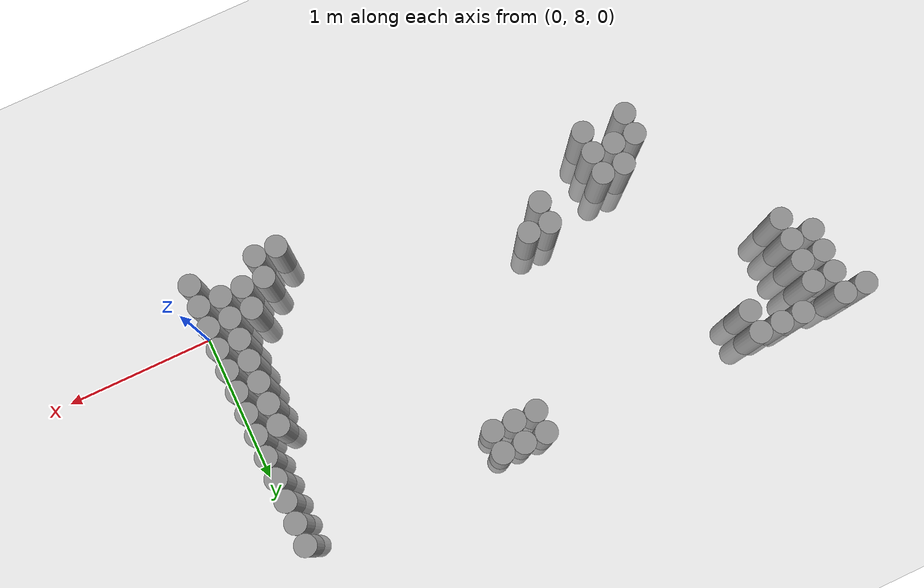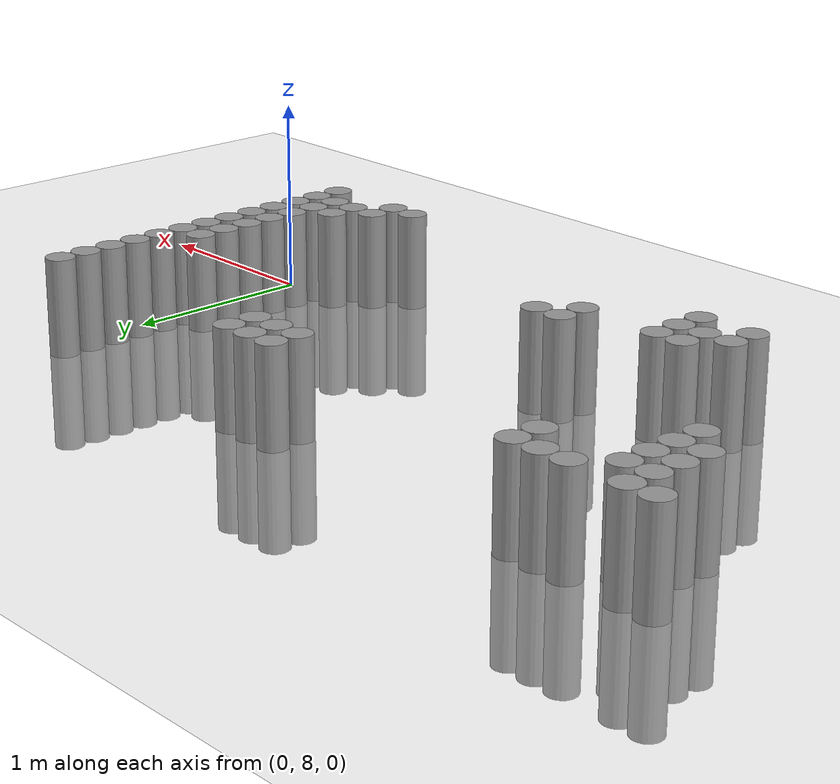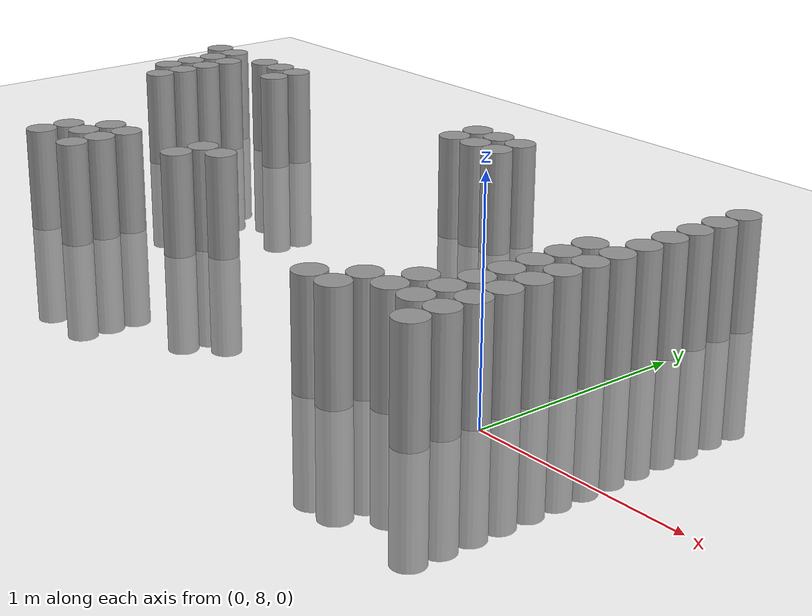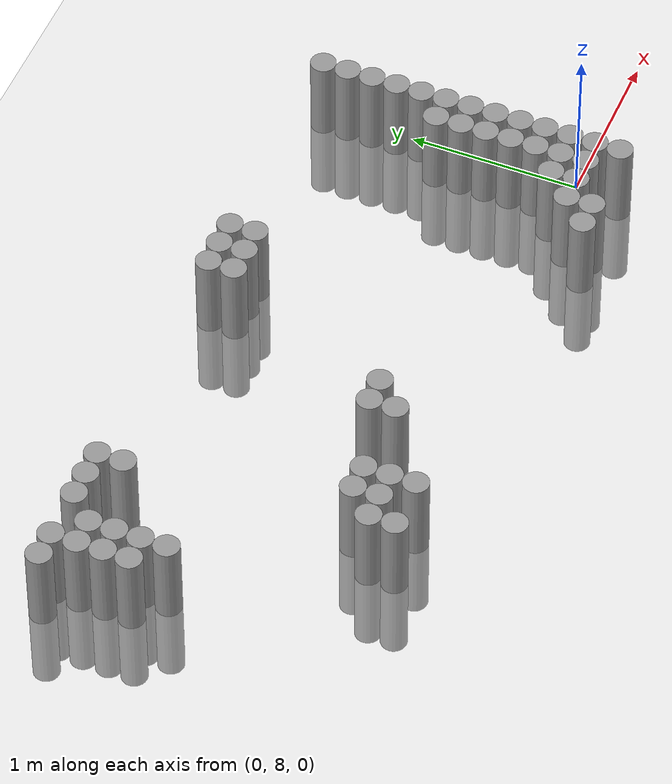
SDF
<sdf version="1.6">
 <world name="default">
  <model name="ground_plane">
   <static>1</static>
   <link name="link">
    <collision name="collision">
     <geometry><plane><normal>0 0 1</normal><size>100 100</size></plane></geometry>
     <surface><friction><ode><mu>100</mu><mu2>50</mu2></ode></friction></surface>
    </collision>
    <visual name="visual">
     <cast_shadows>0</cast_shadows>
     <geometry><plane><normal>0 0 1</normal><size>100 100</size></plane></geometry>
     <material>
      <script><uri>file://media/materials/scripts/gazebo.material</uri><name>Gazebo/Grey</name></script>
     </material>
    </visual>
   </link>
  </model>
  <model name="unit_cylinder_153">
   <pose>-3.975000 9.525000 0.000000 0.000000 0.000000 0.000000</pose>
   <link name="link">
    <inertial>
     <mass>1</mass>
     <inertia><ixx>0.145833</ixx><ixy>0</ixy><ixz>0</ixz><iyy>0.145833</iyy><iyz>0</iyz><izz>0.125</izz></inertia>
    </inertial>
    <collision name="collision">
     <geometry><cylinder><radius>0.075000</radius><length>1</length></cylinder></geometry>
    </collision>
    <visual name="visual">
     <geometry><cylinder><radius>0.075000</radius><length>1</length></cylinder></geometry>
     <material>
      <script><name>Gazebo/Grey</name><uri>file://media/materials/scripts/gazebo.material</uri></script>
     </material>
    </visual>
   </link>
  </model>
  <model name="unit_cylinder_154">
   <pose>-3.825000 9.075000 0.000000 0.000000 0.000000 0.000000</pose>
   <link name="link">
    <inertial>
     <mass>1</mass>
     <inertia><ixx>0.145833</ixx><ixy>0</ixy><ixz>0</ixz><iyy>0.145833</iyy><iyz>0</iyz><izz>0.125</izz></inertia>
    </inertial>
    <collision name="collision">
     <geometry><cylinder><radius>0.075000</radius><length>1</length></cylinder></geometry>
    </collision>
    <visual name="visual">
     <geometry><cylinder><radius>0.075000</radius><length>1</length></cylinder></geometry>
     <material>
      <script><name>Gazebo/Grey</name><uri>file://media/materials/scripts/gazebo.material</uri></script>
     </material>
    </visual>
   </link>
  </model>
  <model name="unit_cylinder_155">
   <pose>-3.825000 9.225000 0.000000 0.000000 0.000000 0.000000</pose>
   <link name="link">
    <inertial>
     <mass>1</mass>
     <inertia><ixx>0.145833</ixx><ixy>0</ixy><ixz>0</ixz><iyy>0.145833</iyy><iyz>0</iyz><izz>0.125</izz></inertia>
    </inertial>
    <collision name="collision">
     <geometry><cylinder><radius>0.075000</radius><length>1</length></cylinder></geometry>
    </collision>
    <visual name="visual">
     <geometry><cylinder><radius>0.075000</radius><length>1</length></cylinder></geometry>
     <material>
      <script><name>Gazebo/Grey</name><uri>file://media/materials/scripts/gazebo.material</uri></script>
     </material>
    </visual>
   </link>
  </model>
  <model name="unit_cylinder_156">
   <pose>-3.825000 9.375000 0.000000 0.000000 0.000000 0.000000</pose>
   <link name="link">
    <inertial>
     <mass>1</mass>
     <inertia><ixx>0.145833</ixx><ixy>0</ixy><ixz>0</ixz><iyy>0.145833</iyy><iyz>0</iyz><izz>0.125</izz></inertia>
    </inertial>
    <collision name="collision">
     <geometry><cylinder><radius>0.075000</radius><length>1</length></cylinder></geometry>
    </collision>
    <visual name="visual">
     <geometry><cylinder><radius>0.075000</radius><length>1</length></cylinder></geometry>
     <material>
      <script><name>Gazebo/Grey</name><uri>file://media/materials/scripts/gazebo.material</uri></script>
     </material>
    </visual>
   </link>
  </model>
  <model name="unit_cylinder_157">
   <pose>-3.825000 9.525000 0.000000 0.000000 0.000000 0.000000</pose>
   <link name="link">
    <inertial>
     <mass>1</mass>
     <inertia><ixx>0.145833</ixx><ixy>0</ixy><ixz>0</ixz><iyy>0.145833</iyy><iyz>0</iyz><izz>0.125</izz></inertia>
    </inertial>
    <collision name="collision">
     <geometry><cylinder><radius>0.075000</radius><length>1</length></cylinder></geometry>
    </collision>
    <visual name="visual">
     <geometry><cylinder><radius>0.075000</radius><length>1</length></cylinder></geometry>
     <material>
      <script><name>Gazebo/Grey</name><uri>file://media/materials/scripts/gazebo.material</uri></script>
     </material>
    </visual>
   </link>
  </model>
  <model name="unit_cylinder_159">
   <pose>-3.675000 8.925000 0.000000 0.000000 0.000000 0.000000</pose>
   <link name="link">
    <inertial>
     <mass>1</mass>
     <inertia><ixx>0.145833</ixx><ixy>0</ixy><ixz>0</ixz><iyy>0.145833</iyy><iyz>0</iyz><izz>0.125</izz></inertia>
    </inertial>
    <collision name="collision">
     <geometry><cylinder><radius>0.075000</radius><length>1</length></cylinder></geometry>
    </collision>
    <visual name="visual">
     <geometry><cylinder><radius>0.075000</radius><length>1</length></cylinder></geometry>
     <material>
      <script><name>Gazebo/Grey</name><uri>file://media/materials/scripts/gazebo.material</uri></script>
     </material>
    </visual>
   </link>
  </model>
  <model name="unit_cylinder_160">
   <pose>-3.675000 9.075000 0.000000 0.000000 0.000000 0.000000</pose>
   <link name="link">
    <inertial>
     <mass>1</mass>
     <inertia><ixx>0.145833</ixx><ixy>0</ixy><ixz>0</ixz><iyy>0.145833</iyy><iyz>0</iyz><izz>0.125</izz></inertia>
    </inertial>
    <collision name="collision">
     <geometry><cylinder><radius>0.075000</radius><length>1</length></cylinder></geometry>
    </collision>
    <visual name="visual">
     <geometry><cylinder><radius>0.075000</radius><length>1</length></cylinder></geometry>
     <material>
      <script><name>Gazebo/Grey</name><uri>file://media/materials/scripts/gazebo.material</uri></script>
     </material>
    </visual>
   </link>
  </model>
  <model name="unit_cylinder_161">
   <pose>-3.675000 9.225000 0.000000 0.000000 0.000000 0.000000</pose>
   <link name="link">
    <inertial>
     <mass>1</mass>
     <inertia><ixx>0.145833</ixx><ixy>0</ixy><ixz>0</ixz><iyy>0.145833</iyy><iyz>0</iyz><izz>0.125</izz></inertia>
    </inertial>
    <collision name="collision">
     <geometry><cylinder><radius>0.075000</radius><length>1</length></cylinder></geometry>
    </collision>
    <visual name="visual">
     <geometry><cylinder><radius>0.075000</radius><length>1</length></cylinder></geometry>
     <material>
      <script><name>Gazebo/Grey</name><uri>file://media/materials/scripts/gazebo.material</uri></script>
     </material>
    </visual>
   </link>
  </model>
  <model name="unit_cylinder_162">
   <pose>-3.675000 9.375000 0.000000 0.000000 0.000000 0.000000</pose>
   <link name="link">
    <inertial>
     <mass>1</mass>
     <inertia><ixx>0.145833</ixx><ixy>0</ixy><ixz>0</ixz><iyy>0.145833</iyy><iyz>0</iyz><izz>0.125</izz></inertia>
    </inertial>
    <collision name="collision">
     <geometry><cylinder><radius>0.075000</radius><length>1</length></cylinder></geometry>
    </collision>
    <visual name="visual">
     <geometry><cylinder><radius>0.075000</radius><length>1</length></cylinder></geometry>
     <material>
      <script><name>Gazebo/Grey</name><uri>file://media/materials/scripts/gazebo.material</uri></script>
     </material>
    </visual>
   </link>
  </model>
  <model name="unit_cylinder_166">
   <pose>-3.525000 9.525000 0.000000 0.000000 0.000000 0.000000</pose>
   <link name="link">
    <inertial>
     <mass>1</mass>
     <inertia><ixx>0.145833</ixx><ixy>0</ixy><ixz>0</ixz><iyy>0.145833</iyy><iyz>0</iyz><izz>0.125</izz></inertia>
    </inertial>
    <collision name="collision">
     <geometry><cylinder><radius>0.075000</radius><length>1</length></cylinder></geometry>
    </collision>
    <visual name="visual">
     <geometry><cylinder><radius>0.075000</radius><length>1</length></cylinder></geometry>
     <material>
      <script><name>Gazebo/Grey</name><uri>file://media/materials/scripts/gazebo.material</uri></script>
     </material>
    </visual>
   </link>
  </model>
  <model name="unit_cylinder_167">
   <pose>-3.375000 9.525000 0.000000 0.000000 0.000000 0.000000</pose>
   <link name="link">
    <inertial>
     <mass>1</mass>
     <inertia><ixx>0.145833</ixx><ixy>0</ixy><ixz>0</ixz><iyy>0.145833</iyy><iyz>0</iyz><izz>0.125</izz></inertia>
    </inertial>
    <collision name="collision">
     <geometry><cylinder><radius>0.075000</radius><length>1</length></cylinder></geometry>
    </collision>
    <visual name="visual">
     <geometry><cylinder><radius>0.075000</radius><length>1</length></cylinder></geometry>
     <material>
      <script><name>Gazebo/Grey</name><uri>file://media/materials/scripts/gazebo.material</uri></script>
     </material>
    </visual>
   </link>
  </model>
  <model name="unit_cylinder_169">
   <pose>-3.225000 9.375000 0.000000 0.000000 0.000000 0.000000</pose>
   <link name="link">
    <inertial>
     <mass>1</mass>
     <inertia><ixx>0.145833</ixx><ixy>0</ixy><ixz>0</ixz><iyy>0.145833</iyy><iyz>0</iyz><izz>0.125</izz></inertia>
    </inertial>
    <collision name="collision">
     <geometry><cylinder><radius>0.075000</radius><length>1</length></cylinder></geometry>
    </collision>
    <visual name="visual">
     <geometry><cylinder><radius>0.075000</radius><length>1</length></cylinder></geometry>
     <material>
      <script><name>Gazebo/Grey</name><uri>file://media/materials/scripts/gazebo.material</uri></script>
     </material>
    </visual>
   </link>
  </model>
  <model name="unit_cylinder_170">
   <pose>-3.225000 9.525000 0.000000 0.000000 0.000000 0.000000</pose>
   <link name="link">
    <inertial>
     <mass>1</mass>
     <inertia><ixx>0.145833</ixx><ixy>0</ixy><ixz>0</ixz><iyy>0.145833</iyy><iyz>0</iyz><izz>0.125</izz></inertia>
    </inertial>
    <collision name="collision">
     <geometry><cylinder><radius>0.075000</radius><length>1</length></cylinder></geometry>
    </collision>
    <visual name="visual">
     <geometry><cylinder><radius>0.075000</radius><length>1</length></cylinder></geometry>
     <material>
      <script><name>Gazebo/Grey</name><uri>file://media/materials/scripts/gazebo.material</uri></script>
     </material>
    </visual>
   </link>
  </model>
  <model name="unit_cylinder_174">
   <pose>-3.075000 7.875000 0.000000 0.000000 0.000000 0.000000</pose>
   <link name="link">
    <inertial>
     <mass>1</mass>
     <inertia><ixx>0.145833</ixx><ixy>0</ixy><ixz>0</ixz><iyy>0.145833</iyy><iyz>0</iyz><izz>0.125</izz></inertia>
    </inertial>
    <collision name="collision">
     <geometry><cylinder><radius>0.075000</radius><length>1</length></cylinder></geometry>
    </collision>
    <visual name="visual">
     <geometry><cylinder><radius>0.075000</radius><length>1</length></cylinder></geometry>
     <material>
      <script><name>Gazebo/Grey</name><uri>file://media/materials/scripts/gazebo.material</uri></script>
     </material>
    </visual>
   </link>
  </model>
  <model name="unit_cylinder_175">
   <pose>-3.075000 8.025000 0.000000 0.000000 0.000000 0.000000</pose>
   <link name="link">
    <inertial>
     <mass>1</mass>
     <inertia><ixx>0.145833</ixx><ixy>0</ixy><ixz>0</ixz><iyy>0.145833</iyy><iyz>0</iyz><izz>0.125</izz></inertia>
    </inertial>
    <collision name="collision">
     <geometry><cylinder><radius>0.075000</radius><length>1</length></cylinder></geometry>
    </collision>
    <visual name="visual">
     <geometry><cylinder><radius>0.075000</radius><length>1</length></cylinder></geometry>
     <material>
      <script><name>Gazebo/Grey</name><uri>file://media/materials/scripts/gazebo.material</uri></script>
     </material>
    </visual>
   </link>
  </model>
  <model name="unit_cylinder_178">
   <pose>-2.925000 8.025000 0.000000 0.000000 0.000000 0.000000</pose>
   <link name="link">
    <inertial>
     <mass>1</mass>
     <inertia><ixx>0.145833</ixx><ixy>0</ixy><ixz>0</ixz><iyy>0.145833</iyy><iyz>0</iyz><izz>0.125</izz></inertia>
    </inertial>
    <collision name="collision">
     <geometry><cylinder><radius>0.075000</radius><length>1</length></cylinder></geometry>
    </collision>
    <visual name="visual">
     <geometry><cylinder><radius>0.075000</radius><length>1</length></cylinder></geometry>
     <material>
      <script><name>Gazebo/Grey</name><uri>file://media/materials/scripts/gazebo.material</uri></script>
     </material>
    </visual>
   </link>
  </model>
  <model name="unit_cylinder_179">
   <pose>-2.925000 8.175000 0.000000 0.000000 0.000000 0.000000</pose>
   <link name="link">
    <inertial>
     <mass>1</mass>
     <inertia><ixx>0.145833</ixx><ixy>0</ixy><ixz>0</ixz><iyy>0.145833</iyy><iyz>0</iyz><izz>0.125</izz></inertia>
    </inertial>
    <collision name="collision">
     <geometry><cylinder><radius>0.075000</radius><length>1</length></cylinder></geometry>
    </collision>
    <visual name="visual">
     <geometry><cylinder><radius>0.075000</radius><length>1</length></cylinder></geometry>
     <material>
      <script><name>Gazebo/Grey</name><uri>file://media/materials/scripts/gazebo.material</uri></script>
     </material>
    </visual>
   </link>
  </model>
  <model name="unit_cylinder_184">
   <pose>-2.775000 7.875000 0.000000 0.000000 0.000000 0.000000</pose>
   <link name="link">
    <inertial>
     <mass>1</mass>
     <inertia><ixx>0.145833</ixx><ixy>0</ixy><ixz>0</ixz><iyy>0.145833</iyy><iyz>0</iyz><izz>0.125</izz></inertia>
    </inertial>
    <collision name="collision">
     <geometry><cylinder><radius>0.075000</radius><length>1</length></cylinder></geometry>
    </collision>
    <visual name="visual">
     <geometry><cylinder><radius>0.075000</radius><length>1</length></cylinder></geometry>
     <material>
      <script><name>Gazebo/Grey</name><uri>file://media/materials/scripts/gazebo.material</uri></script>
     </material>
    </visual>
   </link>
  </model>
  <model name="unit_cylinder_185">
   <pose>-2.775000 8.025000 0.000000 0.000000 0.000000 0.000000</pose>
   <link name="link">
    <inertial>
     <mass>1</mass>
     <inertia><ixx>0.145833</ixx><ixy>0</ixy><ixz>0</ixz><iyy>0.145833</iyy><iyz>0</iyz><izz>0.125</izz></inertia>
    </inertial>
    <collision name="collision">
     <geometry><cylinder><radius>0.075000</radius><length>1</length></cylinder></geometry>
    </collision>
    <visual name="visual">
     <geometry><cylinder><radius>0.075000</radius><length>1</length></cylinder></geometry>
     <material>
      <script><name>Gazebo/Grey</name><uri>file://media/materials/scripts/gazebo.material</uri></script>
     </material>
    </visual>
   </link>
  </model>
  <model name="unit_cylinder_186">
   <pose>-2.775000 8.175000 0.000000 0.000000 0.000000 0.000000</pose>
   <link name="link">
    <inertial>
     <mass>1</mass>
     <inertia><ixx>0.145833</ixx><ixy>0</ixy><ixz>0</ixz><iyy>0.145833</iyy><iyz>0</iyz><izz>0.125</izz></inertia>
    </inertial>
    <collision name="collision">
     <geometry><cylinder><radius>0.075000</radius><length>1</length></cylinder></geometry>
    </collision>
    <visual name="visual">
     <geometry><cylinder><radius>0.075000</radius><length>1</length></cylinder></geometry>
     <material>
      <script><name>Gazebo/Grey</name><uri>file://media/materials/scripts/gazebo.material</uri></script>
     </material>
    </visual>
   </link>
  </model>
  <model name="unit_cylinder_194">
   <pose>-2.325000 8.175000 0.000000 0.000000 0.000000 0.000000</pose>
   <link name="link">
    <inertial>
     <mass>1</mass>
     <inertia><ixx>0.145833</ixx><ixy>0</ixy><ixz>0</ixz><iyy>0.145833</iyy><iyz>0</iyz><izz>0.125</izz></inertia>
    </inertial>
    <collision name="collision">
     <geometry><cylinder><radius>0.075000</radius><length>1</length></cylinder></geometry>
    </collision>
    <visual name="visual">
     <geometry><cylinder><radius>0.075000</radius><length>1</length></cylinder></geometry>
     <material>
      <script><name>Gazebo/Grey</name><uri>file://media/materials/scripts/gazebo.material</uri></script>
     </material>
    </visual>
   </link>
  </model>
  <model name="unit_cylinder_195">
   <pose>-2.325000 8.325000 0.000000 0.000000 0.000000 0.000000</pose>
   <link name="link">
    <inertial>
     <mass>1</mass>
     <inertia><ixx>0.145833</ixx><ixy>0</ixy><ixz>0</ixz><iyy>0.145833</iyy><iyz>0</iyz><izz>0.125</izz></inertia>
    </inertial>
    <collision name="collision">
     <geometry><cylinder><radius>0.075000</radius><length>1</length></cylinder></geometry>
    </collision>
    <visual name="visual">
     <geometry><cylinder><radius>0.075000</radius><length>1</length></cylinder></geometry>
     <material>
      <script><name>Gazebo/Grey</name><uri>file://media/materials/scripts/gazebo.material</uri></script>
     </material>
    </visual>
   </link>
  </model>
  <model name="unit_cylinder_196">
   <pose>-2.175000 8.325000 0.000000 0.000000 0.000000 0.000000</pose>
   <link name="link">
    <inertial>
     <mass>1</mass>
     <inertia><ixx>0.145833</ixx><ixy>0</ixy><ixz>0</ixz><iyy>0.145833</iyy><iyz>0</iyz><izz>0.125</izz></inertia>
    </inertial>
    <collision name="collision">
     <geometry><cylinder><radius>0.075000</radius><length>1</length></cylinder></geometry>
    </collision>
    <visual name="visual">
     <geometry><cylinder><radius>0.075000</radius><length>1</length></cylinder></geometry>
     <material>
      <script><name>Gazebo/Grey</name><uri>file://media/materials/scripts/gazebo.material</uri></script>
     </material>
    </visual>
   </link>
  </model>
  <model name="unit_cylinder_197">
   <pose>-1.725000 9.375000 0.000000 0.000000 0.000000 0.000000</pose>
   <link name="link">
    <inertial>
     <mass>1</mass>
     <inertia><ixx>0.145833</ixx><ixy>0</ixy><ixz>0</ixz><iyy>0.145833</iyy><iyz>0</iyz><izz>0.125</izz></inertia>
    </inertial>
    <collision name="collision">
     <geometry><cylinder><radius>0.075000</radius><length>1</length></cylinder></geometry>
    </collision>
    <visual name="visual">
     <geometry><cylinder><radius>0.075000</radius><length>1</length></cylinder></geometry>
     <material>
      <script><name>Gazebo/Grey</name><uri>file://media/materials/scripts/gazebo.material</uri></script>
     </material>
    </visual>
   </link>
  </model>
  <model name="unit_cylinder_198">
   <pose>-1.725000 9.525000 0.000000 0.000000 0.000000 0.000000</pose>
   <link name="link">
    <inertial>
     <mass>1</mass>
     <inertia><ixx>0.145833</ixx><ixy>0</ixy><ixz>0</ixz><iyy>0.145833</iyy><iyz>0</iyz><izz>0.125</izz></inertia>
    </inertial>
    <collision name="collision">
     <geometry><cylinder><radius>0.075000</radius><length>1</length></cylinder></geometry>
    </collision>
    <visual name="visual">
     <geometry><cylinder><radius>0.075000</radius><length>1</length></cylinder></geometry>
     <material>
      <script><name>Gazebo/Grey</name><uri>file://media/materials/scripts/gazebo.material</uri></script>
     </material>
    </visual>
   </link>
  </model>
  <model name="unit_cylinder_199">
   <pose>-1.575000 9.375000 0.000000 0.000000 0.000000 0.000000</pose>
   <link name="link">
    <inertial>
     <mass>1</mass>
     <inertia><ixx>0.145833</ixx><ixy>0</ixy><ixz>0</ixz><iyy>0.145833</iyy><iyz>0</iyz><izz>0.125</izz></inertia>
    </inertial>
    <collision name="collision">
     <geometry><cylinder><radius>0.075000</radius><length>1</length></cylinder></geometry>
    </collision>
    <visual name="visual">
     <geometry><cylinder><radius>0.075000</radius><length>1</length></cylinder></geometry>
     <material>
      <script><name>Gazebo/Grey</name><uri>file://media/materials/scripts/gazebo.material</uri></script>
     </material>
    </visual>
   </link>
  </model>
  <model name="unit_cylinder_200">
   <pose>-1.575000 9.525000 0.000000 0.000000 0.000000 0.000000</pose>
   <link name="link">
    <inertial>
     <mass>1</mass>
     <inertia><ixx>0.145833</ixx><ixy>0</ixy><ixz>0</ixz><iyy>0.145833</iyy><iyz>0</iyz><izz>0.125</izz></inertia>
    </inertial>
    <collision name="collision">
     <geometry><cylinder><radius>0.075000</radius><length>1</length></cylinder></geometry>
    </collision>
    <visual name="visual">
     <geometry><cylinder><radius>0.075000</radius><length>1</length></cylinder></geometry>
     <material>
      <script><name>Gazebo/Grey</name><uri>file://media/materials/scripts/gazebo.material</uri></script>
     </material>
    </visual>
   </link>
  </model>
  <model name="unit_cylinder_201">
   <pose>-1.425000 9.375000 0.000000 0.000000 0.000000 0.000000</pose>
   <link name="link">
    <inertial>
     <mass>1</mass>
     <inertia><ixx>0.145833</ixx><ixy>0</ixy><ixz>0</ixz><iyy>0.145833</iyy><iyz>0</iyz><izz>0.125</izz></inertia>
    </inertial>
    <collision name="collision">
     <geometry><cylinder><radius>0.075000</radius><length>1</length></cylinder></geometry>
    </collision>
    <visual name="visual">
     <geometry><cylinder><radius>0.075000</radius><length>1</length></cylinder></geometry>
     <material>
      <script><name>Gazebo/Grey</name><uri>file://media/materials/scripts/gazebo.material</uri></script>
     </material>
    </visual>
   </link>
  </model>
  <model name="unit_cylinder_202">
   <pose>-1.425000 9.525000 0.000000 0.000000 0.000000 0.000000</pose>
   <link name="link">
    <inertial>
     <mass>1</mass>
     <inertia><ixx>0.145833</ixx><ixy>0</ixy><ixz>0</ixz><iyy>0.145833</iyy><iyz>0</iyz><izz>0.125</izz></inertia>
    </inertial>
    <collision name="collision">
     <geometry><cylinder><radius>0.075000</radius><length>1</length></cylinder></geometry>
    </collision>
    <visual name="visual">
     <geometry><cylinder><radius>0.075000</radius><length>1</length></cylinder></geometry>
     <material>
      <script><name>Gazebo/Grey</name><uri>file://media/materials/scripts/gazebo.material</uri></script>
     </material>
    </visual>
   </link>
  </model>
  <model name="unit_cylinder_214">
   <pose>-0.675000 7.725000 0.000000 0.000000 0.000000 0.000000</pose>
   <link name="link">
    <inertial>
     <mass>1</mass>
     <inertia><ixx>0.145833</ixx><ixy>0</ixy><ixz>0</ixz><iyy>0.145833</iyy><iyz>0</iyz><izz>0.125</izz></inertia>
    </inertial>
    <collision name="collision">
     <geometry><cylinder><radius>0.075000</radius><length>1</length></cylinder></geometry>
    </collision>
    <visual name="visual">
     <geometry><cylinder><radius>0.075000</radius><length>1</length></cylinder></geometry>
     <material>
      <script><name>Gazebo/Grey</name><uri>file://media/materials/scripts/gazebo.material</uri></script>
     </material>
    </visual>
   </link>
  </model>
  <model name="unit_cylinder_216">
   <pose>-0.525000 7.725000 0.000000 0.000000 0.000000 0.000000</pose>
   <link name="link">
    <inertial>
     <mass>1</mass>
     <inertia><ixx>0.145833</ixx><ixy>0</ixy><ixz>0</ixz><iyy>0.145833</iyy><iyz>0</iyz><izz>0.125</izz></inertia>
    </inertial>
    <collision name="collision">
     <geometry><cylinder><radius>0.075000</radius><length>1</length></cylinder></geometry>
    </collision>
    <visual name="visual">
     <geometry><cylinder><radius>0.075000</radius><length>1</length></cylinder></geometry>
     <material>
      <script><name>Gazebo/Grey</name><uri>file://media/materials/scripts/gazebo.material</uri></script>
     </material>
    </visual>
   </link>
  </model>
  <model name="unit_cylinder_217">
   <pose>-0.525000 7.875000 0.000000 0.000000 0.000000 0.000000</pose>
   <link name="link">
    <inertial>
     <mass>1</mass>
     <inertia><ixx>0.145833</ixx><ixy>0</ixy><ixz>0</ixz><iyy>0.145833</iyy><iyz>0</iyz><izz>0.125</izz></inertia>
    </inertial>
    <collision name="collision">
     <geometry><cylinder><radius>0.075000</radius><length>1</length></cylinder></geometry>
    </collision>
    <visual name="visual">
     <geometry><cylinder><radius>0.075000</radius><length>1</length></cylinder></geometry>
     <material>
      <script><name>Gazebo/Grey</name><uri>file://media/materials/scripts/gazebo.material</uri></script>
     </material>
    </visual>
   </link>
  </model>
  <model name="unit_cylinder_221">
   <pose>-0.375000 7.875000 0.000000 0.000000 0.000000 0.000000</pose>
   <link name="link">
    <inertial>
     <mass>1</mass>
     <inertia><ixx>0.145833</ixx><ixy>0</ixy><ixz>0</ixz><iyy>0.145833</iyy><iyz>0</iyz><izz>0.125</izz></inertia>
    </inertial>
    <collision name="collision">
     <geometry><cylinder><radius>0.075000</radius><length>1</length></cylinder></geometry>
    </collision>
    <visual name="visual">
     <geometry><cylinder><radius>0.075000</radius><length>1</length></cylinder></geometry>
     <material>
      <script><name>Gazebo/Grey</name><uri>file://media/materials/scripts/gazebo.material</uri></script>
     </material>
    </visual>
   </link>
  </model>
  <model name="unit_cylinder_222">
   <pose>-0.375000 8.025000 0.000000 0.000000 0.000000 0.000000</pose>
   <link name="link">
    <inertial>
     <mass>1</mass>
     <inertia><ixx>0.145833</ixx><ixy>0</ixy><ixz>0</ixz><iyy>0.145833</iyy><iyz>0</iyz><izz>0.125</izz></inertia>
    </inertial>
    <collision name="collision">
     <geometry><cylinder><radius>0.075000</radius><length>1</length></cylinder></geometry>
    </collision>
    <visual name="visual">
     <geometry><cylinder><radius>0.075000</radius><length>1</length></cylinder></geometry>
     <material>
      <script><name>Gazebo/Grey</name><uri>file://media/materials/scripts/gazebo.material</uri></script>
     </material>
    </visual>
   </link>
  </model>
  <model name="unit_cylinder_231">
   <pose>-0.225000 7.875000 0.000000 0.000000 0.000000 0.000000</pose>
   <link name="link">
    <inertial>
     <mass>1</mass>
     <inertia><ixx>0.145833</ixx><ixy>0</ixy><ixz>0</ixz><iyy>0.145833</iyy><iyz>0</iyz><izz>0.125</izz></inertia>
    </inertial>
    <collision name="collision">
     <geometry><cylinder><radius>0.075000</radius><length>1</length></cylinder></geometry>
    </collision>
    <visual name="visual">
     <geometry><cylinder><radius>0.075000</radius><length>1</length></cylinder></geometry>
     <material>
      <script><name>Gazebo/Grey</name><uri>file://media/materials/scripts/gazebo.material</uri></script>
     </material>
    </visual>
   </link>
  </model>
  <model name="unit_cylinder_232">
   <pose>-0.225000 8.025000 0.000000 0.000000 0.000000 0.000000</pose>
   <link name="link">
    <inertial>
     <mass>1</mass>
     <inertia><ixx>0.145833</ixx><ixy>0</ixy><ixz>0</ixz><iyy>0.145833</iyy><iyz>0</iyz><izz>0.125</izz></inertia>
    </inertial>
    <collision name="collision">
     <geometry><cylinder><radius>0.075000</radius><length>1</length></cylinder></geometry>
    </collision>
    <visual name="visual">
     <geometry><cylinder><radius>0.075000</radius><length>1</length></cylinder></geometry>
     <material>
      <script><name>Gazebo/Grey</name><uri>file://media/materials/scripts/gazebo.material</uri></script>
     </material>
    </visual>
   </link>
  </model>
  <model name="unit_cylinder_233">
   <pose>-0.225000 8.175000 0.000000 0.000000 0.000000 0.000000</pose>
   <link name="link">
    <inertial>
     <mass>1</mass>
     <inertia><ixx>0.145833</ixx><ixy>0</ixy><ixz>0</ixz><iyy>0.145833</iyy><iyz>0</iyz><izz>0.125</izz></inertia>
    </inertial>
    <collision name="collision">
     <geometry><cylinder><radius>0.075000</radius><length>1</length></cylinder></geometry>
    </collision>
    <visual name="visual">
     <geometry><cylinder><radius>0.075000</radius><length>1</length></cylinder></geometry>
     <material>
      <script><name>Gazebo/Grey</name><uri>file://media/materials/scripts/gazebo.material</uri></script>
     </material>
    </visual>
   </link>
  </model>
  <model name="unit_cylinder_234">
   <pose>-0.225000 8.325000 0.000000 0.000000 0.000000 0.000000</pose>
   <link name="link">
    <inertial>
     <mass>1</mass>
     <inertia><ixx>0.145833</ixx><ixy>0</ixy><ixz>0</ixz><iyy>0.145833</iyy><iyz>0</iyz><izz>0.125</izz></inertia>
    </inertial>
    <collision name="collision">
     <geometry><cylinder><radius>0.075000</radius><length>1</length></cylinder></geometry>
    </collision>
    <visual name="visual">
     <geometry><cylinder><radius>0.075000</radius><length>1</length></cylinder></geometry>
     <material>
      <script><name>Gazebo/Grey</name><uri>file://media/materials/scripts/gazebo.material</uri></script>
     </material>
    </visual>
   </link>
  </model>
  <model name="unit_cylinder_235">
   <pose>-0.225000 8.475000 0.000000 0.000000 0.000000 0.000000</pose>
   <link name="link">
    <inertial>
     <mass>1</mass>
     <inertia><ixx>0.145833</ixx><ixy>0</ixy><ixz>0</ixz><iyy>0.145833</iyy><iyz>0</iyz><izz>0.125</izz></inertia>
    </inertial>
    <collision name="collision">
     <geometry><cylinder><radius>0.075000</radius><length>1</length></cylinder></geometry>
    </collision>
    <visual name="visual">
     <geometry><cylinder><radius>0.075000</radius><length>1</length></cylinder></geometry>
     <material>
      <script><name>Gazebo/Grey</name><uri>file://media/materials/scripts/gazebo.material</uri></script>
     </material>
    </visual>
   </link>
  </model>
  <model name="unit_cylinder_236">
   <pose>-0.225000 8.625000 0.000000 0.000000 0.000000 0.000000</pose>
   <link name="link">
    <inertial>
     <mass>1</mass>
     <inertia><ixx>0.145833</ixx><ixy>0</ixy><ixz>0</ixz><iyy>0.145833</iyy><iyz>0</iyz><izz>0.125</izz></inertia>
    </inertial>
    <collision name="collision">
     <geometry><cylinder><radius>0.075000</radius><length>1</length></cylinder></geometry>
    </collision>
    <visual name="visual">
     <geometry><cylinder><radius>0.075000</radius><length>1</length></cylinder></geometry>
     <material>
      <script><name>Gazebo/Grey</name><uri>file://media/materials/scripts/gazebo.material</uri></script>
     </material>
    </visual>
   </link>
  </model>
  <model name="unit_cylinder_237">
   <pose>-0.225000 8.775000 0.000000 0.000000 0.000000 0.000000</pose>
   <link name="link">
    <inertial>
     <mass>1</mass>
     <inertia><ixx>0.145833</ixx><ixy>0</ixy><ixz>0</ixz><iyy>0.145833</iyy><iyz>0</iyz><izz>0.125</izz></inertia>
    </inertial>
    <collision name="collision">
     <geometry><cylinder><radius>0.075000</radius><length>1</length></cylinder></geometry>
    </collision>
    <visual name="visual">
     <geometry><cylinder><radius>0.075000</radius><length>1</length></cylinder></geometry>
     <material>
      <script><name>Gazebo/Grey</name><uri>file://media/materials/scripts/gazebo.material</uri></script>
     </material>
    </visual>
   </link>
  </model>
  <model name="unit_cylinder_255">
   <pose>-0.075000 7.725000 0.000000 0.000000 0.000000 0.000000</pose>
   <link name="link">
    <inertial>
     <mass>1</mass>
     <inertia><ixx>0.145833</ixx><ixy>0</ixy><ixz>0</ixz><iyy>0.145833</iyy><iyz>0</iyz><izz>0.125</izz></inertia>
    </inertial>
    <collision name="collision">
     <geometry><cylinder><radius>0.075000</radius><length>1</length></cylinder></geometry>
    </collision>
    <visual name="visual">
     <geometry><cylinder><radius>0.075000</radius><length>1</length></cylinder></geometry>
     <material>
      <script><name>Gazebo/Grey</name><uri>file://media/materials/scripts/gazebo.material</uri></script>
     </material>
    </visual>
   </link>
  </model>
  <model name="unit_cylinder_256">
   <pose>-0.075000 7.875000 0.000000 0.000000 0.000000 0.000000</pose>
   <link name="link">
    <inertial>
     <mass>1</mass>
     <inertia><ixx>0.145833</ixx><ixy>0</ixy><ixz>0</ixz><iyy>0.145833</iyy><iyz>0</iyz><izz>0.125</izz></inertia>
    </inertial>
    <collision name="collision">
     <geometry><cylinder><radius>0.075000</radius><length>1</length></cylinder></geometry>
    </collision>
    <visual name="visual">
     <geometry><cylinder><radius>0.075000</radius><length>1</length></cylinder></geometry>
     <material>
      <script><name>Gazebo/Grey</name><uri>file://media/materials/scripts/gazebo.material</uri></script>
     </material>
    </visual>
   </link>
  </model>
  <model name="unit_cylinder_257">
   <pose>-0.075000 8.025000 0.000000 0.000000 0.000000 0.000000</pose>
   <link name="link">
    <inertial>
     <mass>1</mass>
     <inertia><ixx>0.145833</ixx><ixy>0</ixy><ixz>0</ixz><iyy>0.145833</iyy><iyz>0</iyz><izz>0.125</izz></inertia>
    </inertial>
    <collision name="collision">
     <geometry><cylinder><radius>0.075000</radius><length>1</length></cylinder></geometry>
    </collision>
    <visual name="visual">
     <geometry><cylinder><radius>0.075000</radius><length>1</length></cylinder></geometry>
     <material>
      <script><name>Gazebo/Grey</name><uri>file://media/materials/scripts/gazebo.material</uri></script>
     </material>
    </visual>
   </link>
  </model>
  <model name="unit_cylinder_258">
   <pose>-0.075000 8.175000 0.000000 0.000000 0.000000 0.000000</pose>
   <link name="link">
    <inertial>
     <mass>1</mass>
     <inertia><ixx>0.145833</ixx><ixy>0</ixy><ixz>0</ixz><iyy>0.145833</iyy><iyz>0</iyz><izz>0.125</izz></inertia>
    </inertial>
    <collision name="collision">
     <geometry><cylinder><radius>0.075000</radius><length>1</length></cylinder></geometry>
    </collision>
    <visual name="visual">
     <geometry><cylinder><radius>0.075000</radius><length>1</length></cylinder></geometry>
     <material>
      <script><name>Gazebo/Grey</name><uri>file://media/materials/scripts/gazebo.material</uri></script>
     </material>
    </visual>
   </link>
  </model>
  <model name="unit_cylinder_259">
   <pose>-0.075000 8.325000 0.000000 0.000000 0.000000 0.000000</pose>
   <link name="link">
    <inertial>
     <mass>1</mass>
     <inertia><ixx>0.145833</ixx><ixy>0</ixy><ixz>0</ixz><iyy>0.145833</iyy><iyz>0</iyz><izz>0.125</izz></inertia>
    </inertial>
    <collision name="collision">
     <geometry><cylinder><radius>0.075000</radius><length>1</length></cylinder></geometry>
    </collision>
    <visual name="visual">
     <geometry><cylinder><radius>0.075000</radius><length>1</length></cylinder></geometry>
     <material>
      <script><name>Gazebo/Grey</name><uri>file://media/materials/scripts/gazebo.material</uri></script>
     </material>
    </visual>
   </link>
  </model>
  <model name="unit_cylinder_260">
   <pose>-0.075000 8.475000 0.000000 0.000000 0.000000 0.000000</pose>
   <link name="link">
    <inertial>
     <mass>1</mass>
     <inertia><ixx>0.145833</ixx><ixy>0</ixy><ixz>0</ixz><iyy>0.145833</iyy><iyz>0</iyz><izz>0.125</izz></inertia>
    </inertial>
    <collision name="collision">
     <geometry><cylinder><radius>0.075000</radius><length>1</length></cylinder></geometry>
    </collision>
    <visual name="visual">
     <geometry><cylinder><radius>0.075000</radius><length>1</length></cylinder></geometry>
     <material>
      <script><name>Gazebo/Grey</name><uri>file://media/materials/scripts/gazebo.material</uri></script>
     </material>
    </visual>
   </link>
  </model>
  <model name="unit_cylinder_261">
   <pose>-0.075000 8.625000 0.000000 0.000000 0.000000 0.000000</pose>
   <link name="link">
    <inertial>
     <mass>1</mass>
     <inertia><ixx>0.145833</ixx><ixy>0</ixy><ixz>0</ixz><iyy>0.145833</iyy><iyz>0</iyz><izz>0.125</izz></inertia>
    </inertial>
    <collision name="collision">
     <geometry><cylinder><radius>0.075000</radius><length>1</length></cylinder></geometry>
    </collision>
    <visual name="visual">
     <geometry><cylinder><radius>0.075000</radius><length>1</length></cylinder></geometry>
     <material>
      <script><name>Gazebo/Grey</name><uri>file://media/materials/scripts/gazebo.material</uri></script>
     </material>
    </visual>
   </link>
  </model>
  <model name="unit_cylinder_262">
   <pose>-0.075000 8.775000 0.000000 0.000000 0.000000 0.000000</pose>
   <link name="link">
    <inertial>
     <mass>1</mass>
     <inertia><ixx>0.145833</ixx><ixy>0</ixy><ixz>0</ixz><iyy>0.145833</iyy><iyz>0</iyz><izz>0.125</izz></inertia>
    </inertial>
    <collision name="collision">
     <geometry><cylinder><radius>0.075000</radius><length>1</length></cylinder></geometry>
    </collision>
    <visual name="visual">
     <geometry><cylinder><radius>0.075000</radius><length>1</length></cylinder></geometry>
     <material>
      <script><name>Gazebo/Grey</name><uri>file://media/materials/scripts/gazebo.material</uri></script>
     </material>
    </visual>
   </link>
  </model>
  <model name="unit_cylinder_263">
   <pose>-0.075000 8.925000 0.000000 0.000000 0.000000 0.000000</pose>
   <link name="link">
    <inertial>
     <mass>1</mass>
     <inertia><ixx>0.145833</ixx><ixy>0</ixy><ixz>0</ixz><iyy>0.145833</iyy><iyz>0</iyz><izz>0.125</izz></inertia>
    </inertial>
    <collision name="collision">
     <geometry><cylinder><radius>0.075000</radius><length>1</length></cylinder></geometry>
    </collision>
    <visual name="visual">
     <geometry><cylinder><radius>0.075000</radius><length>1</length></cylinder></geometry>
     <material>
      <script><name>Gazebo/Grey</name><uri>file://media/materials/scripts/gazebo.material</uri></script>
     </material>
    </visual>
   </link>
  </model>
  <model name="unit_cylinder_264">
   <pose>-0.075000 9.075000 0.000000 0.000000 0.000000 0.000000</pose>
   <link name="link">
    <inertial>
     <mass>1</mass>
     <inertia><ixx>0.145833</ixx><ixy>0</ixy><ixz>0</ixz><iyy>0.145833</iyy><iyz>0</iyz><izz>0.125</izz></inertia>
    </inertial>
    <collision name="collision">
     <geometry><cylinder><radius>0.075000</radius><length>1</length></cylinder></geometry>
    </collision>
    <visual name="visual">
     <geometry><cylinder><radius>0.075000</radius><length>1</length></cylinder></geometry>
     <material>
      <script><name>Gazebo/Grey</name><uri>file://media/materials/scripts/gazebo.material</uri></script>
     </material>
    </visual>
   </link>
  </model>
  <model name="unit_cylinder_265">
   <pose>-0.075000 9.225000 0.000000 0.000000 0.000000 0.000000</pose>
   <link name="link">
    <inertial>
     <mass>1</mass>
     <inertia><ixx>0.145833</ixx><ixy>0</ixy><ixz>0</ixz><iyy>0.145833</iyy><iyz>0</iyz><izz>0.125</izz></inertia>
    </inertial>
    <collision name="collision">
     <geometry><cylinder><radius>0.075000</radius><length>1</length></cylinder></geometry>
    </collision>
    <visual name="visual">
     <geometry><cylinder><radius>0.075000</radius><length>1</length></cylinder></geometry>
     <material>
      <script><name>Gazebo/Grey</name><uri>file://media/materials/scripts/gazebo.material</uri></script>
     </material>
    </visual>
   </link>
  </model>
  <model name="unit_cylinder_266">
   <pose>-0.075000 9.375000 0.000000 0.000000 0.000000 0.000000</pose>
   <link name="link">
    <inertial>
     <mass>1</mass>
     <inertia><ixx>0.145833</ixx><ixy>0</ixy><ixz>0</ixz><iyy>0.145833</iyy><iyz>0</iyz><izz>0.125</izz></inertia>
    </inertial>
    <collision name="collision">
     <geometry><cylinder><radius>0.075000</radius><length>1</length></cylinder></geometry>
    </collision>
    <visual name="visual">
     <geometry><cylinder><radius>0.075000</radius><length>1</length></cylinder></geometry>
     <material>
      <script><name>Gazebo/Grey</name><uri>file://media/materials/scripts/gazebo.material</uri></script>
     </material>
    </visual>
   </link>
  </model>
  <model name="unit_cylinder_267">
   <pose>-0.075000 9.525000 0.000000 0.000000 0.000000 0.000000</pose>
   <link name="link">
    <inertial>
     <mass>1</mass>
     <inertia><ixx>0.145833</ixx><ixy>0</ixy><ixz>0</ixz><iyy>0.145833</iyy><iyz>0</iyz><izz>0.125</izz></inertia>
    </inertial>
    <collision name="collision">
     <geometry><cylinder><radius>0.075000</radius><length>1</length></cylinder></geometry>
    </collision>
    <visual name="visual">
     <geometry><cylinder><radius>0.075000</radius><length>1</length></cylinder></geometry>
     <material>
      <script><name>Gazebo/Grey</name><uri>file://media/materials/scripts/gazebo.material</uri></script>
     </material>
    </visual>
   </link>
  </model>
 </world>
</sdf>
